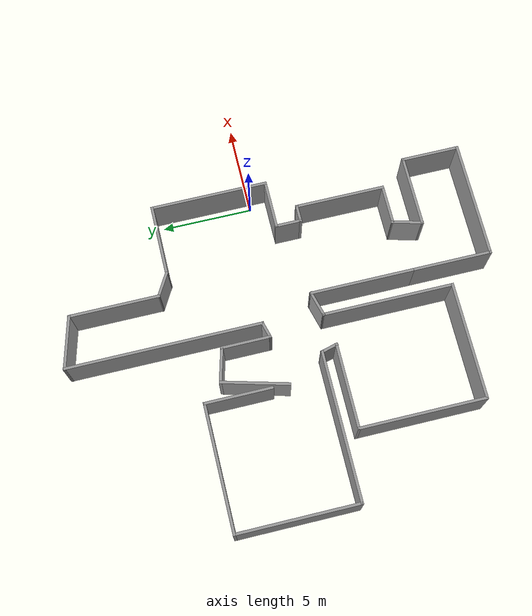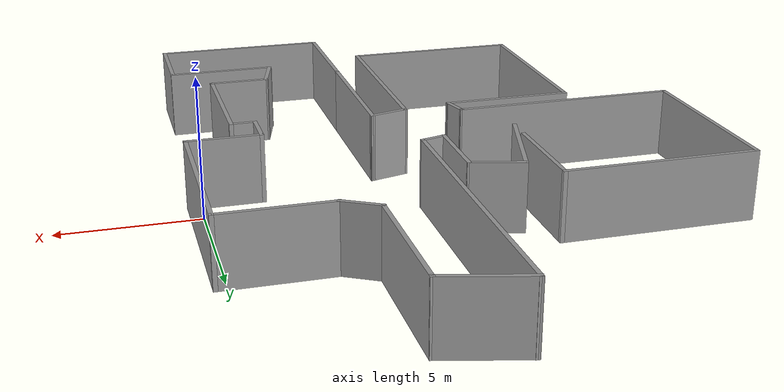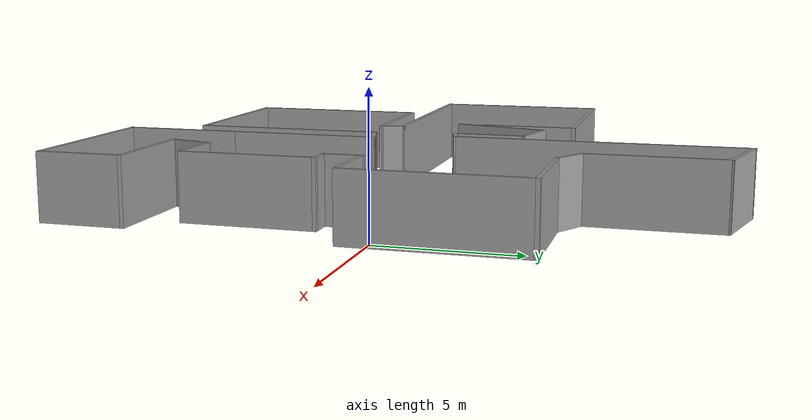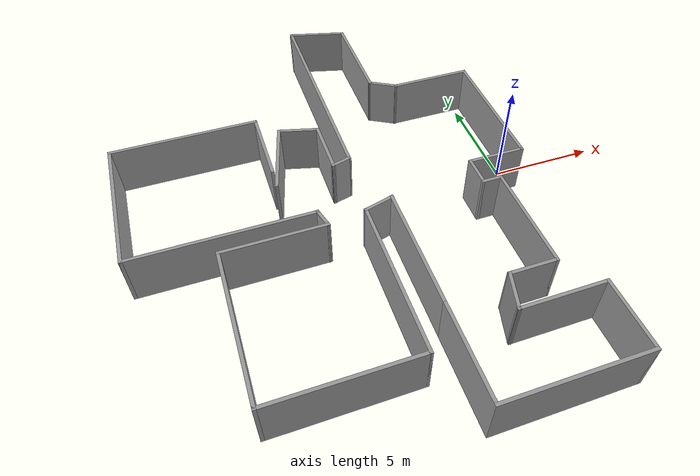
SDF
<?xml version='1.0'?>
<sdf version='1.6'>
  <model name='res0.1'>
    <pose frame=''>-8.69446 -0.093008 0 0 -0 0</pose>
    <link name='Wall_0'>
      <collision name='Wall_0_Collision'>
        <geometry>
          <box>
            <size>3.75 0.15 2.5</size>
          </box>
        </geometry>
        <pose frame=''>0 0 1.25 0 -0 0</pose>
      </collision>
      <visual name='Wall_0_Visual'>
        <pose frame=''>0 0 1.25 0 -0 0</pose>
        <geometry>
          <box>
            <size>3.75 0.15 2.5</size>
          </box>
        </geometry>
        <material>
          <script>
            <uri>file://media/materials/scripts/gazebo.material</uri>
            <name>Gazebo/Grey</name>
          </script>
          <ambient>1 1 1 1</ambient>
        </material>
        <meta>
          <layer>0</layer>
        </meta>
      </visual>
      <pose frame=''>-2.21905 3.23415 0 0 -0 1.5708</pose>
    </link>
    <link name='Wall_1'>
      <collision name='Wall_1_Collision'>
        <geometry>
          <box>
            <size>7 0.15 2.5</size>
          </box>
        </geometry>
        <pose frame=''>0 0 1.25 0 -0 0</pose>
      </collision>
      <visual name='Wall_1_Visual'>
        <pose frame=''>0 0 1.25 0 -0 0</pose>
        <geometry>
          <box>
            <size>7 0.15 2.5</size>
          </box>
        </geometry>
        <material>
          <script>
            <uri>file://media/materials/scripts/gazebo.material</uri>
            <name>Gazebo/Grey</name>
          </script>
          <ambient>1 1 1 1</ambient>
        </material>
        <meta>
          <layer>0</layer>
        </meta>
      </visual>
      <pose frame=''>-5.64405 5.03415 0 0 -0 3.14159</pose>
    </link>
    <link name='Wall_10'>
      <collision name='Wall_10_Collision'>
        <geometry>
          <box>
            <size>5.75 0.15 2.5</size>
          </box>
        </geometry>
        <pose frame=''>0 0 1.25 0 -0 0</pose>
      </collision>
      <visual name='Wall_10_Visual'>
        <pose frame=''>0 0 1.25 0 -0 0</pose>
        <geometry>
          <box>
            <size>5.75 0.15 2.5</size>
          </box>
        </geometry>
        <material>
          <script>
            <uri>file://media/materials/scripts/gazebo.material</uri>
            <name>Gazebo/Grey</name>
          </script>
          <ambient>1 1 1 1</ambient>
        </material>
        <meta>
          <layer>0</layer>
        </meta>
      </visual>
      <pose frame=''>2.30494 -4.58749 0 0 -0 -1.5708</pose>
    </link>
    <link name='Wall_11'>
      <collision name='Wall_11_Collision'>
        <geometry>
          <box>
            <size>4.5 0.15 2.5</size>
          </box>
        </geometry>
        <pose frame=''>0 0 1.25 0 -0 0</pose>
      </collision>
      <visual name='Wall_11_Visual'>
        <pose frame=''>0 0 1.25 0 -0 0</pose>
        <geometry>
          <box>
            <size>4.5 0.15 2.5</size>
          </box>
        </geometry>
        <material>
          <script>
            <uri>file://media/materials/scripts/gazebo.material</uri>
            <name>Gazebo/Grey</name>
          </script>
          <ambient>1 1 1 1</ambient>
        </material>
        <meta>
          <layer>0</layer>
        </meta>
      </visual>
      <pose frame=''>2.30494 -9.56249 0 0 -0 -1.5708</pose>
    </link>
    <link name='Wall_12'>
      <collision name='Wall_12_Collision'>
        <geometry>
          <box>
            <size>6.5 0.15 2.5</size>
          </box>
        </geometry>
        <pose frame=''>0 0 1.25 0 -0 0</pose>
      </collision>
      <visual name='Wall_12_Visual'>
        <pose frame=''>0 0 1.25 0 -0 0</pose>
        <geometry>
          <box>
            <size>6.5 0.15 2.5</size>
          </box>
        </geometry>
        <material>
          <script>
            <uri>file://media/materials/scripts/gazebo.material</uri>
            <name>Gazebo/Grey</name>
          </script>
          <ambient>1 1 1 1</ambient>
        </material>
        <meta>
          <layer>0</layer>
        </meta>
      </visual>
      <pose frame=''>5.47994 -11.7375 0 0 -0 0</pose>
    </link>
    <link name='Wall_13'>
      <collision name='Wall_13_Collision'>
        <geometry>
          <box>
            <size>3.25 0.15 2.5</size>
          </box>
        </geometry>
        <pose frame=''>0 0 1.25 0 -0 0</pose>
      </collision>
      <visual name='Wall_13_Visual'>
        <pose frame=''>0 0 1.25 0 -0 0</pose>
        <geometry>
          <box>
            <size>3.25 0.15 2.5</size>
          </box>
        </geometry>
        <material>
          <script>
            <uri>file://media/materials/scripts/gazebo.material</uri>
            <name>Gazebo/Grey</name>
          </script>
          <ambient>1 1 1 1</ambient>
        </material>
        <meta>
          <layer>0</layer>
        </meta>
      </visual>
      <pose frame=''>8.65494 -10.1875 0 0 -0 1.5708</pose>
    </link>
    <link name='Wall_14'>
      <collision name='Wall_14_Collision'>
        <geometry>
          <box>
            <size>4 0.15 2.5</size>
          </box>
        </geometry>
        <pose frame=''>0 0 1.25 0 -0 0</pose>
      </collision>
      <visual name='Wall_14_Visual'>
        <pose frame=''>0 0 1.25 0 -0 0</pose>
        <geometry>
          <box>
            <size>4 0.15 2.5</size>
          </box>
        </geometry>
        <material>
          <script>
            <uri>file://media/materials/scripts/gazebo.material</uri>
            <name>Gazebo/Grey</name>
          </script>
          <ambient>1 1 1 1</ambient>
        </material>
        <meta>
          <layer>0</layer>
        </meta>
      </visual>
      <pose frame=''>6.72994 -8.63749 0 0 -0 3.14159</pose>
    </link>
    <link name='Wall_15'>
      <collision name='Wall_15_Collision'>
        <geometry>
          <box>
            <size>1.75 0.15 2.5</size>
          </box>
        </geometry>
        <pose frame=''>0 0 1.25 0 -0 0</pose>
      </collision>
      <visual name='Wall_15_Visual'>
        <pose frame=''>0 0 1.25 0 -0 0</pose>
        <geometry>
          <box>
            <size>1.75 0.15 2.5</size>
          </box>
        </geometry>
        <material>
          <script>
            <uri>file://media/materials/scripts/gazebo.material</uri>
            <name>Gazebo/Grey</name>
          </script>
          <ambient>1 1 1 1</ambient>
        </material>
        <meta>
          <layer>0</layer>
        </meta>
      </visual>
      <pose frame=''>5.012 -7.86475 0 0 -0 1.309</pose>
    </link>
    <link name='Wall_16'>
      <collision name='Wall_16_Collision'>
        <geometry>
          <box>
            <size>2.25 0.15 2.5</size>
          </box>
        </geometry>
        <pose frame=''>0 0 1.25 0 -0 0</pose>
      </collision>
      <visual name='Wall_16_Visual'>
        <pose frame=''>0 0 1.25 0 -0 0</pose>
        <geometry>
          <box>
            <size>2.25 0.15 2.5</size>
          </box>
        </geometry>
        <material>
          <script>
            <uri>file://media/materials/scripts/gazebo.material</uri>
            <name>Gazebo/Grey</name>
          </script>
          <ambient>1 1 1 1</ambient>
        </material>
        <meta>
          <layer>0</layer>
        </meta>
      </visual>
      <pose frame=''>6.26905 -7.092 0 0 -0 0</pose>
    </link>
    <link name='Wall_17'>
      <collision name='Wall_17_Collision'>
        <geometry>
          <box>
            <size>5 0.15 2.5</size>
          </box>
        </geometry>
        <pose frame=''>0 0 1.25 0 -0 0</pose>
      </collision>
      <visual name='Wall_17_Visual'>
        <pose frame=''>0 0 1.25 0 -0 0</pose>
        <geometry>
          <box>
            <size>5 0.15 2.5</size>
          </box>
        </geometry>
        <material>
          <script>
            <uri>file://media/materials/scripts/gazebo.material</uri>
            <name>Gazebo/Grey</name>
          </script>
          <ambient>1 1 1 1</ambient>
        </material>
        <meta>
          <layer>0</layer>
        </meta>
      </visual>
      <pose frame=''>7.31905 -4.667 0 0 -0 1.5708</pose>
    </link>
    <link name='Wall_18'>
      <collision name='Wall_18_Collision'>
        <geometry>
          <box>
            <size>1 0.15 2.5</size>
          </box>
        </geometry>
        <pose frame=''>0 0 1.25 0 -0 0</pose>
      </collision>
      <visual name='Wall_18_Visual'>
        <pose frame=''>0 0 1.25 0 -0 0</pose>
        <geometry>
          <box>
            <size>1 0.15 2.5</size>
          </box>
        </geometry>
        <material>
          <script>
            <uri>file://media/materials/scripts/gazebo.material</uri>
            <name>Gazebo/Grey</name>
          </script>
          <ambient>1 1 1 1</ambient>
        </material>
        <meta>
          <layer>0</layer>
        </meta>
      </visual>
      <pose frame=''>6.89405 -2.242 0 0 -0 3.14159</pose>
    </link>
    <link name='Wall_19'>
      <collision name='Wall_19_Collision'>
        <geometry>
          <box>
            <size>1.5 0.15 2.5</size>
          </box>
        </geometry>
        <pose frame=''>0 0 1.25 0 -0 0</pose>
      </collision>
      <visual name='Wall_19_Visual'>
        <pose frame=''>0 0 1.25 0 -0 0</pose>
        <geometry>
          <box>
            <size>1.5 0.15 2.5</size>
          </box>
        </geometry>
        <material>
          <script>
            <uri>file://media/materials/scripts/gazebo.material</uri>
            <name>Gazebo/Grey</name>
          </script>
          <ambient>1 1 1 1</ambient>
        </material>
        <meta>
          <layer>0</layer>
        </meta>
      </visual>
      <pose frame=''>6.46905 -1.567 0 0 -0 1.5708</pose>
    </link>
    <link name='Wall_2'>
      <collision name='Wall_2_Collision'>
        <geometry>
          <box>
            <size>6.75 0.15 2.5</size>
          </box>
        </geometry>
        <pose frame=''>0 0 1.25 0 -0 0</pose>
      </collision>
      <visual name='Wall_2_Visual'>
        <pose frame=''>0 0 1.25 0 -0 0</pose>
        <geometry>
          <box>
            <size>6.75 0.15 2.5</size>
          </box>
        </geometry>
        <material>
          <script>
            <uri>file://media/materials/scripts/gazebo.material</uri>
            <name>Gazebo/Grey</name>
          </script>
          <ambient>1 1 1 1</ambient>
        </material>
        <meta>
          <layer>0</layer>
        </meta>
      </visual>
      <pose frame=''>-9.06905 1.73415 0 0 -0 -1.5708</pose>
    </link>
    <link name='Wall_20'>
      <collision name='Wall_20_Collision'>
        <geometry>
          <box>
            <size>2.75 0.15 2.5</size>
          </box>
        </geometry>
        <pose frame=''>0 0 1.25 0 -0 0</pose>
      </collision>
      <visual name='Wall_20_Visual'>
        <pose frame=''>0 0 1.25 0 -0 0</pose>
        <geometry>
          <box>
            <size>2.75 0.15 2.5</size>
          </box>
        </geometry>
        <material>
          <script>
            <uri>file://media/materials/scripts/gazebo.material</uri>
            <name>Gazebo/Grey</name>
          </script>
          <ambient>1 1 1 1</ambient>
        </material>
        <meta>
          <layer>0</layer>
        </meta>
      </visual>
      <pose frame=''>7.76905 -0.892004 0 0 -0 0</pose>
    </link>
    <link name='Wall_21'>
      <collision name='Wall_21_Collision'>
        <geometry>
          <box>
            <size>6.5 0.15 2.5</size>
          </box>
        </geometry>
        <pose frame=''>0 0 1.25 0 -0 0</pose>
      </collision>
      <visual name='Wall_21_Visual'>
        <pose frame=''>0 0 1.25 0 -0 0</pose>
        <geometry>
          <box>
            <size>6.5 0.15 2.5</size>
          </box>
        </geometry>
        <material>
          <script>
            <uri>file://media/materials/scripts/gazebo.material</uri>
            <name>Gazebo/Grey</name>
          </script>
          <ambient>1 1 1 1</ambient>
        </material>
        <meta>
          <layer>0</layer>
        </meta>
      </visual>
      <pose frame=''>9.06905 2.283 0 0 -0 1.5708</pose>
    </link>
    <link name='Wall_22'>
      <collision name='Wall_22_Collision'>
        <geometry>
          <box>
            <size>4 0.15 2.5</size>
          </box>
        </geometry>
        <pose frame=''>0 0 1.25 0 -0 0</pose>
      </collision>
      <visual name='Wall_22_Visual'>
        <pose frame=''>0 0 1.25 0 -0 0</pose>
        <geometry>
          <box>
            <size>4 0.15 2.5</size>
          </box>
        </geometry>
        <material>
          <script>
            <uri>file://media/materials/scripts/gazebo.material</uri>
            <name>Gazebo/Grey</name>
          </script>
          <ambient>1 1 1 1</ambient>
        </material>
        <meta>
          <layer>0</layer>
        </meta>
      </visual>
      <pose frame=''>7.14405 5.458 0 0 -0 3.14159</pose>
    </link>
    <link name='Wall_23'>
      <collision name='Wall_23_Collision'>
        <geometry>
          <box>
            <size>1.5 0.15 2.5</size>
          </box>
        </geometry>
        <pose frame=''>0 0 1.25 0 -0 0</pose>
      </collision>
      <visual name='Wall_23_Visual'>
        <pose frame=''>0 0 1.25 0 -0 0</pose>
        <geometry>
          <box>
            <size>1.5 0.15 2.5</size>
          </box>
        </geometry>
        <material>
          <script>
            <uri>file://media/materials/scripts/gazebo.material</uri>
            <name>Gazebo/Grey</name>
          </script>
          <ambient>1 1 1 1</ambient>
        </material>
        <meta>
          <layer>0</layer>
        </meta>
      </visual>
      <pose frame=''>4.63449 5.7955 0 0 -0 2.61799</pose>
    </link>
    <link name='Wall_24'>
      <collision name='Wall_24_Collision'>
        <geometry>
          <box>
            <size>5 0.15 2.5</size>
          </box>
        </geometry>
        <pose frame=''>0 0 1.25 0 -0 0</pose>
      </collision>
      <visual name='Wall_24_Visual'>
        <pose frame=''>0 0 1.25 0 -0 0</pose>
        <geometry>
          <box>
            <size>5 0.15 2.5</size>
          </box>
        </geometry>
        <material>
          <script>
            <uri>file://media/materials/scripts/gazebo.material</uri>
            <name>Gazebo/Grey</name>
          </script>
          <ambient>1 1 1 1</ambient>
        </material>
        <meta>
          <layer>0</layer>
        </meta>
      </visual>
      <pose frame=''>4.04992 8.558 0 0 -0 1.5708</pose>
    </link>
    <link name='Wall_25'>
      <collision name='Wall_25_Collision'>
        <geometry>
          <box>
            <size>3 0.15 2.5</size>
          </box>
        </geometry>
        <pose frame=''>0 0 1.25 0 -0 0</pose>
      </collision>
      <visual name='Wall_25_Visual'>
        <pose frame=''>0 0 1.25 0 -0 0</pose>
        <geometry>
          <box>
            <size>3 0.15 2.5</size>
          </box>
        </geometry>
        <material>
          <script>
            <uri>file://media/materials/scripts/gazebo.material</uri>
            <name>Gazebo/Grey</name>
          </script>
          <ambient>1 1 1 1</ambient>
        </material>
        <meta>
          <layer>0</layer>
        </meta>
      </visual>
      <pose frame=''>2.67347 11.3518 0 0 -0 2.87979</pose>
    </link>
    <link name='Wall_26'>
      <collision name='Wall_26_Collision'>
        <geometry>
          <box>
            <size>10.75 0.15 2.5</size>
          </box>
        </geometry>
        <pose frame=''>0 0 1.25 0 -0 0</pose>
      </collision>
      <visual name='Wall_26_Visual'>
        <pose frame=''>0 0 1.25 0 -0 0</pose>
        <geometry>
          <box>
            <size>10.75 0.15 2.5</size>
          </box>
        </geometry>
        <material>
          <script>
            <uri>file://media/materials/scripts/gazebo.material</uri>
            <name>Gazebo/Grey</name>
          </script>
          <ambient>1 1 1 1</ambient>
        </material>
        <meta>
          <layer>0</layer>
        </meta>
      </visual>
      <pose frame=''>1.29703 6.42063 0 0 -0 -1.5708</pose>
    </link>
    <link name='Wall_27'>
      <collision name='Wall_27_Collision'>
        <geometry>
          <box>
            <size>1 0.15 2.5</size>
          </box>
        </geometry>
        <pose frame=''>0 0 1.25 0 -0 0</pose>
      </collision>
      <visual name='Wall_27_Visual'>
        <pose frame=''>0 0 1.25 0 -0 0</pose>
        <geometry>
          <box>
            <size>1 0.15 2.5</size>
          </box>
        </geometry>
        <material>
          <script>
            <uri>file://media/materials/scripts/gazebo.material</uri>
            <name>Gazebo/Grey</name>
          </script>
          <ambient>1 1 1 1</ambient>
        </material>
        <meta>
          <layer>0</layer>
        </meta>
      </visual>
      <pose frame=''>0.886512 1.01063 0 0 -0 -2.87979</pose>
    </link>
    <link name='Wall_28'>
      <collision name='Wall_28_Collision'>
        <geometry>
          <box>
            <size>2.75 0.15 2.5</size>
          </box>
        </geometry>
        <pose frame=''>0 0 1.25 0 -0 0</pose>
      </collision>
      <visual name='Wall_28_Visual'>
        <pose frame=''>0 0 1.25 0 -0 0</pose>
        <geometry>
          <box>
            <size>2.75 0.15 2.5</size>
          </box>
        </geometry>
        <material>
          <script>
            <uri>file://media/materials/scripts/gazebo.material</uri>
            <name>Gazebo/Grey</name>
          </script>
          <ambient>1 1 1 1</ambient>
        </material>
        <meta>
          <layer>0</layer>
        </meta>
      </visual>
      <pose frame=''>0.475994 2.20063 0 0 -0 1.5708</pose>
    </link>
    <link name='Wall_29'>
      <collision name='Wall_29_Collision'>
        <geometry>
          <box>
            <size>2 0.15 2.5</size>
          </box>
        </geometry>
        <pose frame=''>0 0 1.25 0 -0 0</pose>
      </collision>
      <visual name='Wall_29_Visual'>
        <pose frame=''>0 0 1.25 0 -0 0</pose>
        <geometry>
          <box>
            <size>2 0.15 2.5</size>
          </box>
        </geometry>
        <material>
          <script>
            <uri>file://media/materials/scripts/gazebo.material</uri>
            <name>Gazebo/Grey</name>
          </script>
          <ambient>1 1 1 1</ambient>
        </material>
        <meta>
          <layer>0</layer>
        </meta>
      </visual>
      <pose frame=''>-0.417488 3.74004 0 0 -0 2.87979</pose>
    </link>
    <link name='Wall_3'>
      <collision name='Wall_3_Collision'>
        <geometry>
          <box>
            <size>8.25 0.15 2.5</size>
          </box>
        </geometry>
        <pose frame=''>0 0 1.25 0 -0 0</pose>
      </collision>
      <visual name='Wall_3_Visual'>
        <pose frame=''>0 0 1.25 0 -0 0</pose>
        <geometry>
          <box>
            <size>8.25 0.15 2.5</size>
          </box>
        </geometry>
        <material>
          <script>
            <uri>file://media/materials/scripts/gazebo.material</uri>
            <name>Gazebo/Grey</name>
          </script>
          <ambient>1 1 1 1</ambient>
        </material>
        <meta>
          <layer>0</layer>
        </meta>
      </visual>
      <pose frame=''>-5.01905 -1.56585 0 0 -0 0</pose>
    </link>
    <link name='Wall_30'>
      <collision name='Wall_30_Collision'>
        <geometry>
          <box>
            <size>3.75 0.15 2.5</size>
          </box>
        </geometry>
        <pose frame=''>0 0 1.25 0 -0 0</pose>
      </collision>
      <visual name='Wall_30_Visual'>
        <pose frame=''>0 0 1.25 0 -0 0</pose>
        <geometry>
          <box>
            <size>3.75 0.15 2.5</size>
          </box>
        </geometry>
        <material>
          <script>
            <uri>file://media/materials/scripts/gazebo.material</uri>
            <name>Gazebo/Grey</name>
          </script>
          <ambient>1 1 1 1</ambient>
        </material>
        <meta>
          <layer>0</layer>
        </meta>
      </visual>
      <pose frame=''>-1.77684 2.24078 0 0 -0 -1.8326</pose>
    </link>
    <link name='Wall_4'>
      <collision name='Wall_4_Collision'>
        <geometry>
          <box>
            <size>1 0.15 2.5</size>
          </box>
        </geometry>
        <pose frame=''>0 0 1.25 0 -0 0</pose>
      </collision>
      <visual name='Wall_4_Visual'>
        <pose frame=''>0 0 1.25 0 -0 0</pose>
        <geometry>
          <box>
            <size>1 0.15 2.5</size>
          </box>
        </geometry>
        <material>
          <script>
            <uri>file://media/materials/scripts/gazebo.material</uri>
            <name>Gazebo/Grey</name>
          </script>
          <ambient>1 1 1 1</ambient>
        </material>
        <meta>
          <layer>0</layer>
        </meta>
      </visual>
      <pose frame=''>-0.859055 -1.97637 0 0 -0 -1.309</pose>
    </link>
    <link name='Wall_5'>
      <collision name='Wall_5_Collision'>
        <geometry>
          <box>
            <size>4.75 0.15 2.5</size>
          </box>
        </geometry>
        <pose frame=''>0 0 1.25 0 -0 0</pose>
      </collision>
      <visual name='Wall_5_Visual'>
        <pose frame=''>0 0 1.25 0 -0 0</pose>
        <geometry>
          <box>
            <size>4.75 0.15 2.5</size>
          </box>
        </geometry>
        <material>
          <script>
            <uri>file://media/materials/scripts/gazebo.material</uri>
            <name>Gazebo/Grey</name>
          </script>
          <ambient>1 1 1 1</ambient>
        </material>
        <meta>
          <layer>0</layer>
        </meta>
      </visual>
      <pose frame=''>-3.04906 -2.38689 0 0 -0 3.14159</pose>
    </link>
    <link name='Wall_6'>
      <collision name='Wall_6_Collision'>
        <geometry>
          <box>
            <size>7 0.15 2.5</size>
          </box>
        </geometry>
        <pose frame=''>0 0 1.25 0 -0 0</pose>
      </collision>
      <visual name='Wall_6_Visual'>
        <pose frame=''>0 0 1.25 0 -0 0</pose>
        <geometry>
          <box>
            <size>7 0.15 2.5</size>
          </box>
        </geometry>
        <material>
          <script>
            <uri>file://media/materials/scripts/gazebo.material</uri>
            <name>Gazebo/Grey</name>
          </script>
          <ambient>1 1 1 1</ambient>
        </material>
        <meta>
          <layer>0</layer>
        </meta>
      </visual>
      <pose frame=''>-5.34906 -5.81189 0 0 -0 -1.5708</pose>
    </link>
    <link name='Wall_7'>
      <collision name='Wall_7_Collision'>
        <geometry>
          <box>
            <size>6.5 0.15 2.5</size>
          </box>
        </geometry>
        <pose frame=''>0 0 1.25 0 -0 0</pose>
      </collision>
      <visual name='Wall_7_Visual'>
        <pose frame=''>0 0 1.25 0 -0 0</pose>
        <geometry>
          <box>
            <size>6.5 0.15 2.5</size>
          </box>
        </geometry>
        <material>
          <script>
            <uri>file://media/materials/scripts/gazebo.material</uri>
            <name>Gazebo/Grey</name>
          </script>
          <ambient>1 1 1 1</ambient>
        </material>
        <meta>
          <layer>0</layer>
        </meta>
      </visual>
      <pose frame=''>-2.17406 -9.23689 0 0 -0 0</pose>
    </link>
    <link name='Wall_8'>
      <collision name='Wall_8_Collision'>
        <geometry>
          <box>
            <size>7.25 0.15 2.5</size>
          </box>
        </geometry>
        <pose frame=''>0 0 1.25 0 -0 0</pose>
      </collision>
      <visual name='Wall_8_Visual'>
        <pose frame=''>0 0 1.25 0 -0 0</pose>
        <geometry>
          <box>
            <size>7.25 0.15 2.5</size>
          </box>
        </geometry>
        <material>
          <script>
            <uri>file://media/materials/scripts/gazebo.material</uri>
            <name>Gazebo/Grey</name>
          </script>
          <ambient>1 1 1 1</ambient>
        </material>
        <meta>
          <layer>0</layer>
        </meta>
      </visual>
      <pose frame=''>1.00094 -5.68689 0 0 -0 1.5708</pose>
    </link>
    <link name='Wall_9'>
      <collision name='Wall_9_Collision'>
        <geometry>
          <box>
            <size>1.5 0.15 2.5</size>
          </box>
        </geometry>
        <pose frame=''>0 0 1.25 0 -0 0</pose>
      </collision>
      <visual name='Wall_9_Visual'>
        <pose frame=''>0 0 1.25 0 -0 0</pose>
        <geometry>
          <box>
            <size>1.5 0.15 2.5</size>
          </box>
        </geometry>
        <material>
          <script>
            <uri>file://media/materials/scripts/gazebo.material</uri>
            <name>Gazebo/Grey</name>
          </script>
          <ambient>1 1 1 1</ambient>
        </material>
        <meta>
          <layer>0</layer>
        </meta>
      </visual>
      <pose frame=''>1.65294 -1.96219 0 0 -0 0.261799</pose>
    </link>
    <static>1</static>
  </model>
</sdf>
